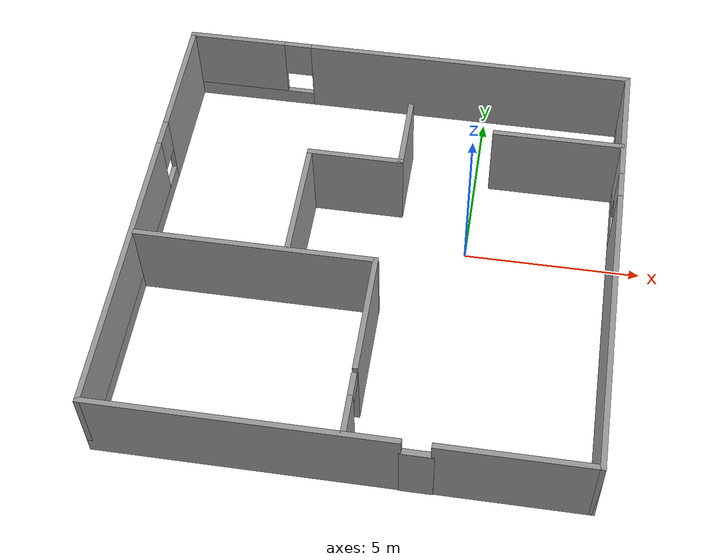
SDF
<?xml version='1.0'?>
<sdf version='1.7'>
  <model name='simple_home'>
    <pose>-2.42721 -1.16385 0 0 -0 0</pose>
    <link name='Door_0'>
      <collision name='Door_0_Collision'>
        <geometry>
          <box>
            <size>0.9 0.17 2</size>
          </box>
        </geometry>
        <pose>0 0 1 0 -0 0</pose>
      </collision>
      <visual name='Door_0_Visual'>
        <pose>0 0 1 0 -0 0</pose>
        <geometry>
          <box>
            <size>0.9 0.17 2</size>
          </box>
        </geometry>
        <material>
          <script>
            <uri>file://media/materials/scripts/gazebo.material</uri>
            <name>Gazebo/Grey</name>
          </script>
        </material>
      </visual>
      <pose>2.01601 -6.43038 0 0 -0 0</pose>
    </link>
    <link name='Wall_0'>
      <collision name='Wall_0_Collision'>
        <geometry>
          <box>
            <size>4.25 0.15 2.5</size>
          </box>
        </geometry>
        <pose>0 0 1.25 0 -0 0</pose>
      </collision>
      <visual name='Wall_0_Visual'>
        <pose>0 0 1.25 0 -0 0</pose>
        <geometry>
          <box>
            <size>4.25 0.15 2.5</size>
          </box>
        </geometry>
        <material>
          <script>
            <uri>file://media/materials/scripts/gazebo.material</uri>
            <name>Gazebo/Grey</name>
          </script>
          <ambient>1 1 1 1</ambient>
        </material>
        <meta>
          <layer>0</layer>
        </meta>
      </visual>
      <pose>4.5 -6.425 0 0 -0 0</pose>
    </link>
    <link name='Wall_10'>
      <collision name='Wall_10_Collision'>
        <geometry>
          <box>
            <size>3.5 0.15 2.5</size>
          </box>
        </geometry>
        <pose>0 0 1.25 0 -0 0</pose>
      </collision>
      <visual name='Wall_10_Visual'>
        <pose>0 0 1.25 0 -0 0</pose>
        <geometry>
          <box>
            <size>3.5 0.15 2.5</size>
          </box>
        </geometry>
        <material>
          <script>
            <uri>file://media/materials/scripts/gazebo.material</uri>
            <name>Gazebo/Grey</name>
          </script>
          <ambient>1 1 1 1</ambient>
        </material>
        <meta>
          <layer>0</layer>
        </meta>
      </visual>
      <pose>0.173196 -2.79346 0 0 -0 1.5708</pose>
    </link>
    <link name='Wall_11'>
      <collision name='Wall_11_Collision'>
        <geometry>
          <box>
            <size>6.75 0.15 2.5</size>
          </box>
        </geometry>
        <pose>0 0 1.25 0 -0 0</pose>
      </collision>
      <visual name='Wall_11_Visual'>
        <pose>0 0 1.25 0 -0 0</pose>
        <geometry>
          <box>
            <size>6.75 0.15 2.5</size>
          </box>
        </geometry>
        <material>
          <script>
            <uri>file://media/materials/scripts/gazebo.material</uri>
            <name>Gazebo/Grey</name>
          </script>
          <ambient>1 1 1 1</ambient>
        </material>
        <meta>
          <layer>0</layer>
        </meta>
      </visual>
      <pose>-3.1268 -1.11846 0 0 -0 3.14159</pose>
    </link>
    <link name='Wall_13'>
      <collision name='Wall_13_Collision'>
        <geometry>
          <box>
            <size>3.5 0.15 2.5</size>
          </box>
        </geometry>
        <pose>0 0 1.25 0 -0 0</pose>
      </collision>
      <visual name='Wall_13_Visual'>
        <pose>0 0 1.25 0 -0 0</pose>
        <geometry>
          <box>
            <size>3.5 0.15 2.5</size>
          </box>
        </geometry>
        <material>
          <script>
            <uri>file://media/materials/scripts/gazebo.material</uri>
            <name>Gazebo/Grey</name>
          </script>
          <ambient>1 1 1 1</ambient>
        </material>
        <meta>
          <layer>0</layer>
        </meta>
      </visual>
      <pose>-2.24343 0.693825 0 0 -0 1.5708</pose>
    </link>
    <link name='Wall_14'>
      <collision name='Wall_14_Collision'>
        <geometry>
          <box>
            <size>2.75 0.15 2.5</size>
          </box>
        </geometry>
        <pose>0 0 1.25 0 -0 0</pose>
      </collision>
      <visual name='Wall_14_Visual'>
        <pose>0 0 1.25 0 -0 0</pose>
        <geometry>
          <box>
            <size>2.75 0.15 2.5</size>
          </box>
        </geometry>
        <material>
          <script>
            <uri>file://media/materials/scripts/gazebo.material</uri>
            <name>Gazebo/Grey</name>
          </script>
          <ambient>1 1 1 1</ambient>
        </material>
        <meta>
          <layer>0</layer>
        </meta>
      </visual>
      <pose>-0.943432 2.36883 0 0 -0 0</pose>
    </link>
    <link name='Wall_15'>
      <collision name='Wall_15_Collision'>
        <geometry>
          <box>
            <size>2.25 0.15 2.5</size>
          </box>
        </geometry>
        <pose>0 0 1.25 0 -0 0</pose>
      </collision>
      <visual name='Wall_15_Visual'>
        <pose>0 0 1.25 0 -0 0</pose>
        <geometry>
          <box>
            <size>2.25 0.15 2.5</size>
          </box>
        </geometry>
        <material>
          <script>
            <uri>file://media/materials/scripts/gazebo.material</uri>
            <name>Gazebo/Grey</name>
          </script>
          <ambient>1 1 1 1</ambient>
        </material>
        <meta>
          <layer>0</layer>
        </meta>
      </visual>
      <pose>0.356568 3.41883 0 0 -0 1.5708</pose>
    </link>
    <link name='Wall_17'>
      <collision name='Wall_17_Collision'>
        <geometry>
          <box>
            <size>3.75 0.15 2.5</size>
          </box>
        </geometry>
        <pose>0 0 1.25 0 -0 0</pose>
      </collision>
      <visual name='Wall_17_Visual'>
        <pose>0 0 1.25 0 -0 0</pose>
        <geometry>
          <box>
            <size>3.75 0.15 2.5</size>
          </box>
        </geometry>
        <material>
          <script>
            <uri>file://media/materials/scripts/gazebo.material</uri>
            <name>Gazebo/Grey</name>
          </script>
          <ambient>1 1 1 1</ambient>
        </material>
        <meta>
          <layer>0</layer>
        </meta>
      </visual>
      <pose>4.69573 3.82149 0 0 -0 0</pose>
    </link>
    <link name='Wall_3'>
      <pose>6.55 0 0 0 -0 1.5708</pose>
      <visual name='Wall_3_Visual_0'>
        <pose>-2.24283 0 1.25 0 -0 0</pose>
        <geometry>
          <box>
            <size>8.51434 0.15 2.5</size>
          </box>
        </geometry>
        <material>
          <script>
            <uri>file://media/materials/scripts/gazebo.material</uri>
            <name>Gazebo/Grey</name>
          </script>
          <ambient>1 1 1 1</ambient>
        </material>
        <meta>
          <layer>0</layer>
        </meta>
      </visual>
      <collision name='Wall_3_Collision_0'>
        <geometry>
          <box>
            <size>8.51434 0.15 2.5</size>
          </box>
        </geometry>
        <pose>-2.24283 0 1.25 0 -0 0</pose>
      </collision>
      <visual name='Wall_3_Visual_1'>
        <pose>4.25717 0 0.25 0 -0 0</pose>
        <geometry>
          <box>
            <size>4.48566 0.15 0.5</size>
          </box>
        </geometry>
        <material>
          <script>
            <uri>file://media/materials/scripts/gazebo.material</uri>
            <name>Gazebo/Grey</name>
          </script>
          <ambient>1 1 1 1</ambient>
        </material>
        <meta>
          <layer>0</layer>
        </meta>
      </visual>
      <collision name='Wall_3_Collision_1'>
        <geometry>
          <box>
            <size>4.48566 0.15 0.5</size>
          </box>
        </geometry>
        <pose>4.25717 0 0.25 0 -0 0</pose>
      </collision>
      <visual name='Wall_3_Visual_2'>
        <pose>4.65717 0 1.5 0 -0 0</pose>
        <geometry>
          <box>
            <size>3.68566 0.15 2</size>
          </box>
        </geometry>
        <material>
          <script>
            <uri>file://media/materials/scripts/gazebo.material</uri>
            <name>Gazebo/Grey</name>
          </script>
          <ambient>1 1 1 1</ambient>
        </material>
        <meta>
          <layer>0</layer>
        </meta>
      </visual>
      <collision name='Wall_3_Collision_2'>
        <geometry>
          <box>
            <size>3.68566 0.15 2</size>
          </box>
        </geometry>
        <pose>4.65717 0 1.5 0 -0 0</pose>
      </collision>
      <visual name='Wall_3_Visual_3'>
        <pose>2.41434 0 1.9 0 -0 0</pose>
        <geometry>
          <box>
            <size>0.8 0.15 1.2</size>
          </box>
        </geometry>
        <material>
          <script>
            <uri>file://media/materials/scripts/gazebo.material</uri>
            <name>Gazebo/Grey</name>
          </script>
          <ambient>1 1 1 1</ambient>
        </material>
        <meta>
          <layer>0</layer>
        </meta>
      </visual>
      <collision name='Wall_3_Collision_3'>
        <geometry>
          <box>
            <size>0.8 0.15 1.2</size>
          </box>
        </geometry>
        <pose>2.41434 0 1.9 0 -0 0</pose>
      </collision>
    </link>
    <link name='Wall_4'>
      <pose>-0 6.425 0 0 -0 3.14159</pose>
      <visual name='Wall_4_Visual_0'>
        <pose>-1.84016 0 1.25 0 -0 0</pose>
        <geometry>
          <box>
            <size>9.56968 0.15 2.5</size>
          </box>
        </geometry>
        <material>
          <script>
            <uri>file://media/materials/scripts/gazebo.material</uri>
            <name>Gazebo/Grey</name>
          </script>
          <ambient>1 1 1 1</ambient>
        </material>
        <meta>
          <layer>0</layer>
        </meta>
      </visual>
      <collision name='Wall_4_Collision_0'>
        <geometry>
          <box>
            <size>9.56968 0.15 2.5</size>
          </box>
        </geometry>
        <pose>-1.84016 0 1.25 0 -0 0</pose>
      </collision>
      <visual name='Wall_4_Visual_1'>
        <pose>4.78484 0 0.25 0 -0 0</pose>
        <geometry>
          <box>
            <size>3.68032 0.15 0.5</size>
          </box>
        </geometry>
        <material>
          <script>
            <uri>file://media/materials/scripts/gazebo.material</uri>
            <name>Gazebo/Grey</name>
          </script>
          <ambient>1 1 1 1</ambient>
        </material>
        <meta>
          <layer>0</layer>
        </meta>
      </visual>
      <collision name='Wall_4_Collision_1'>
        <geometry>
          <box>
            <size>3.68032 0.15 0.5</size>
          </box>
        </geometry>
        <pose>4.78484 0 0.25 0 -0 0</pose>
      </collision>
      <visual name='Wall_4_Visual_2'>
        <pose>5.18484 0 1.5 0 -0 0</pose>
        <geometry>
          <box>
            <size>2.88032 0.15 2</size>
          </box>
        </geometry>
        <material>
          <script>
            <uri>file://media/materials/scripts/gazebo.material</uri>
            <name>Gazebo/Grey</name>
          </script>
          <ambient>1 1 1 1</ambient>
        </material>
        <meta>
          <layer>0</layer>
        </meta>
      </visual>
      <collision name='Wall_4_Collision_2'>
        <geometry>
          <box>
            <size>2.88032 0.15 2</size>
          </box>
        </geometry>
        <pose>5.18484 0 1.5 0 -0 0</pose>
      </collision>
      <visual name='Wall_4_Visual_3'>
        <pose>3.34468 0 1.9 0 -0 0</pose>
        <geometry>
          <box>
            <size>0.8 0.15 1.2</size>
          </box>
        </geometry>
        <material>
          <script>
            <uri>file://media/materials/scripts/gazebo.material</uri>
            <name>Gazebo/Grey</name>
          </script>
          <ambient>1 1 1 1</ambient>
        </material>
        <meta>
          <layer>0</layer>
        </meta>
      </visual>
      <collision name='Wall_4_Collision_3'>
        <geometry>
          <box>
            <size>0.8 0.15 1.2</size>
          </box>
        </geometry>
        <pose>3.34468 0 1.9 0 -0 0</pose>
      </collision>
    </link>
    <link name='Wall_5'>
      <pose>-6.55 0 0 0 -0 -1.5708</pose>
      <visual name='Wall_5_Visual_0'>
        <pose>-4.67246 0 1.25 0 -0 0</pose>
        <geometry>
          <box>
            <size>3.65507 0.15 2.5</size>
          </box>
        </geometry>
        <material>
          <script>
            <uri>file://media/materials/scripts/gazebo.material</uri>
            <name>Gazebo/Grey</name>
          </script>
          <ambient>1 1 1 1</ambient>
        </material>
        <meta>
          <layer>0</layer>
        </meta>
      </visual>
      <collision name='Wall_5_Collision_0'>
        <geometry>
          <box>
            <size>3.65507 0.15 2.5</size>
          </box>
        </geometry>
        <pose>-4.67246 0 1.25 0 -0 0</pose>
      </collision>
      <visual name='Wall_5_Visual_1'>
        <pose>1.82753 0 0.25 0 -0 0</pose>
        <geometry>
          <box>
            <size>9.34493 0.15 0.5</size>
          </box>
        </geometry>
        <material>
          <script>
            <uri>file://media/materials/scripts/gazebo.material</uri>
            <name>Gazebo/Grey</name>
          </script>
          <ambient>1 1 1 1</ambient>
        </material>
        <meta>
          <layer>0</layer>
        </meta>
      </visual>
      <collision name='Wall_5_Collision_1'>
        <geometry>
          <box>
            <size>9.34493 0.15 0.5</size>
          </box>
        </geometry>
        <pose>1.82753 0 0.25 0 -0 0</pose>
      </collision>
      <visual name='Wall_5_Visual_2'>
        <pose>2.22754 0 1.5 0 -0 0</pose>
        <geometry>
          <box>
            <size>8.54493 0.15 2</size>
          </box>
        </geometry>
        <material>
          <script>
            <uri>file://media/materials/scripts/gazebo.material</uri>
            <name>Gazebo/Grey</name>
          </script>
          <ambient>1 1 1 1</ambient>
        </material>
        <meta>
          <layer>0</layer>
        </meta>
      </visual>
      <collision name='Wall_5_Collision_2'>
        <geometry>
          <box>
            <size>8.54493 0.15 2</size>
          </box>
        </geometry>
        <pose>2.22754 0 1.5 0 -0 0</pose>
      </collision>
      <visual name='Wall_5_Visual_3'>
        <pose>-2.44493 0 1.9 0 -0 0</pose>
        <geometry>
          <box>
            <size>0.8 0.15 1.2</size>
          </box>
        </geometry>
        <material>
          <script>
            <uri>file://media/materials/scripts/gazebo.material</uri>
            <name>Gazebo/Grey</name>
          </script>
          <ambient>1 1 1 1</ambient>
        </material>
        <meta>
          <layer>0</layer>
        </meta>
      </visual>
      <collision name='Wall_5_Collision_3'>
        <geometry>
          <box>
            <size>0.8 0.15 1.2</size>
          </box>
        </geometry>
        <pose>-2.44493 0 1.9 0 -0 0</pose>
      </collision>
    </link>
    <link name='Wall_6'>
      <collision name='Wall_6_Collision'>
        <geometry>
          <box>
            <size>8.25 0.15 2.5</size>
          </box>
        </geometry>
        <pose>0 0 1.25 0 -0 0</pose>
      </collision>
      <visual name='Wall_6_Visual'>
        <pose>0 0 1.25 0 -0 0</pose>
        <geometry>
          <box>
            <size>8.25 0.15 2.5</size>
          </box>
        </geometry>
        <material>
          <script>
            <uri>file://media/materials/scripts/gazebo.material</uri>
            <name>Gazebo/Grey</name>
          </script>
          <ambient>1 1 1 1</ambient>
        </material>
        <meta>
          <layer>0</layer>
        </meta>
      </visual>
      <pose>-2.5 -6.425 0 0 -0 0</pose>
    </link>
    <link name='Wall_8'>
      <pose>0.173196 -5.53446 0 0 -0 1.5708</pose>
      <visual name='Wall_8_Visual_0'>
        <pose>-0.328335 0 1.25 0 -0 0</pose>
        <geometry>
          <box>
            <size>1.09333 0.15 2.5</size>
          </box>
        </geometry>
        <material>
          <script>
            <uri>file://media/materials/scripts/gazebo.material</uri>
            <name>Gazebo/Grey</name>
          </script>
          <ambient>1 1 1 1</ambient>
        </material>
        <meta>
          <layer>0</layer>
        </meta>
      </visual>
      <collision name='Wall_8_Collision_0'>
        <geometry>
          <box>
            <size>1.09333 0.15 2.5</size>
          </box>
        </geometry>
        <pose>-0.328335 0 1.25 0 -0 0</pose>
      </collision>
      <visual name='Wall_8_Visual_1'>
        <pose>0.546665 0 2.25 0 -0 0</pose>
        <geometry>
          <box>
            <size>0.656669 0.15 0.5</size>
          </box>
        </geometry>
        <material>
          <script>
            <uri>file://media/materials/scripts/gazebo.material</uri>
            <name>Gazebo/Grey</name>
          </script>
          <ambient>1 1 1 1</ambient>
        </material>
        <meta>
          <layer>0</layer>
        </meta>
      </visual>
      <collision name='Wall_8_Collision_1'>
        <geometry>
          <box>
            <size>0.656669 0.15 0.5</size>
          </box>
        </geometry>
        <pose>0.546665 0 2.25 0 -0 0</pose>
      </collision>
    </link>
    <static>1</static>
  </model>
</sdf>
